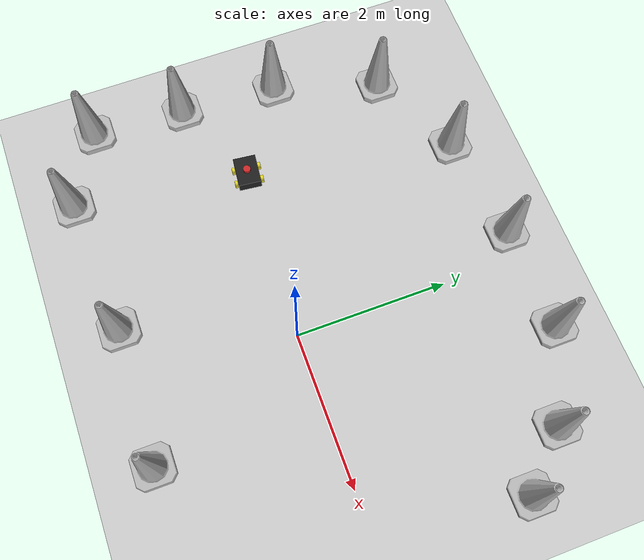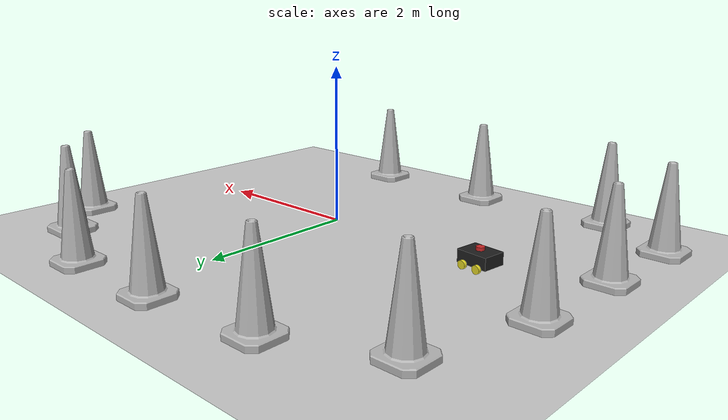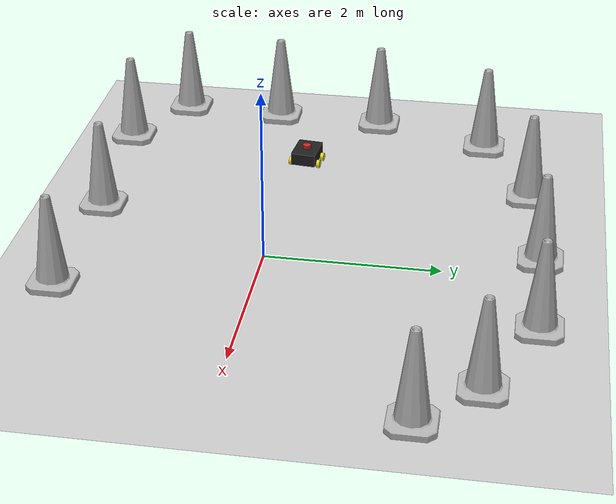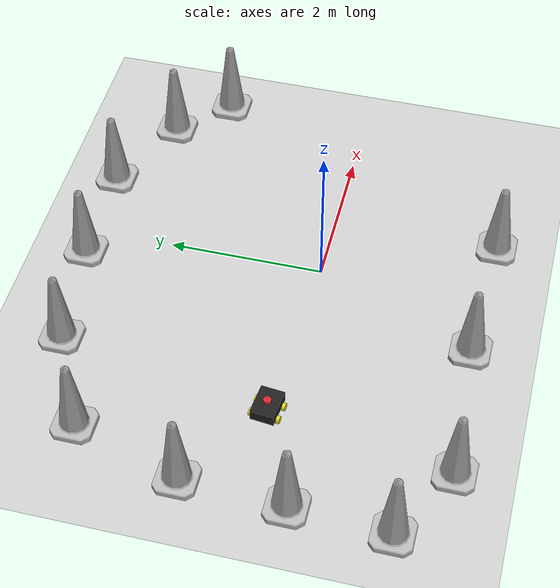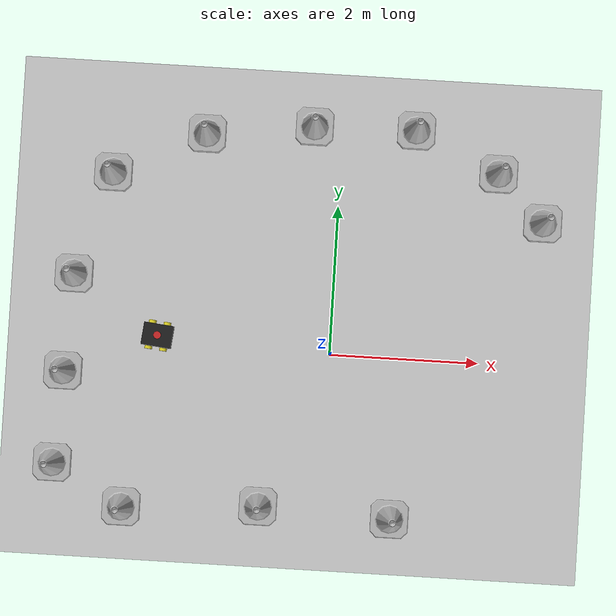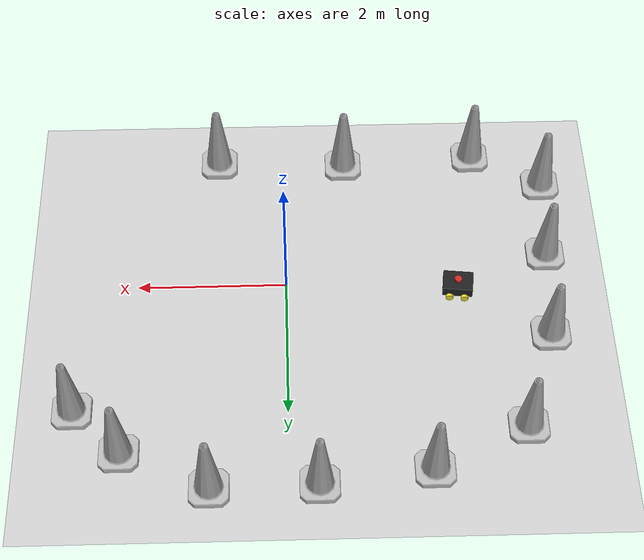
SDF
<sdf version="1.7">
 <world name="default">
  <light name="sun" type="directional">
   <pose>0 0 10 0 -0 0</pose>
   <diffuse>0.8 0.8 0.8 1</diffuse>
   <specular>0.2 0.2 0.2 1</specular>
   <attenuation>
    <range>1000</range>
    <constant>0.9</constant>
    <linear>0.01</linear>
    <quadratic>0.001</quadratic>
   </attenuation>
   <direction>-0.5 0.1 -0.9</direction>
   <spot><inner_angle>0</inner_angle><outer_angle>0</outer_angle><falloff>0</falloff></spot>
  </light>
  <model name="ground_plane">
   <static>1</static>
   <link name="link">
    <collision name="collision">
     <geometry><plane><normal>0 0 1</normal><size>100 100</size></plane></geometry>
     <surface><friction><ode><mu>100</mu><mu2>50</mu2></ode></friction></surface>
    </collision>
    <visual name="visual">
     <cast_shadows>0</cast_shadows>
     <geometry><plane><normal>0 0 1</normal><size>100 100</size></plane></geometry>
     <material>
      <script><uri>file://media/materials/scripts/gazebo.material</uri><name>Gazebo/Grey</name></script>
     </material>
    </visual>
   </link>
  </model>
  <gravity>0 0 -9.8</gravity>
  <magnetic_field>6e-06 2.3e-05 -4.2e-05</magnetic_field>
  <atmosphere type="adiabatic"/>
  <physics type="ode">
   <max_step_size>0.001</max_step_size>
   <real_time_factor>1</real_time_factor>
   <real_time_update_rate>1000</real_time_update_rate>
  </physics>
  <scene><ambient>0.4 0.4 0.4 1</ambient><background>0.7 0.7 0.7 1</background><shadows>1</shadows></scene>
  <audio><device>default</device></audio>
  <spherical_coordinates>
   <surface_model>EARTH_WGS84</surface_model>
   <latitude_deg>0</latitude_deg>
   <longitude_deg>0</longitude_deg>
   <elevation>0</elevation>
   <heading_deg>0</heading_deg>
  </spherical_coordinates>
  <model name="my_bot">
   <link name="base_link">
    <inertial>
     <pose>0 0 0.091667 0 -0 0</pose>
     <mass>0.6</mass>
     <inertia>
      <ixx>0.00559667</ixx>
      <ixy>0</ixy>
      <ixz>0</ixz>
      <iyy>0.00851333</iyy>
      <iyz>0</iyz>
      <izz>0.0105417</izz>
     </inertia>
    </inertial>
    <collision name="base_link_fixed_joint_lump__chassis_link_collision">
     <pose>0 0 0.075 0 -0 0</pose>
     <geometry><box><size>0.4 0.3 0.15</size></box></geometry>
    </collision>
    <collision name="base_link_fixed_joint_lump__lidar_link_collision_1">
     <pose>0 0 0.175 0 -0 0</pose>
     <geometry><cylinder><length>0.04</length><radius>0.05</radius></cylinder></geometry>
    </collision>
    <visual name="base_link_fixed_joint_lump__chassis_link_visual">
     <pose>0 0 0.075 0 -0 0</pose>
     <geometry><box><size>0.4 0.3 0.15</size></box></geometry>
     <material>
      <script><name>Gazebo/Black</name><uri>file://media/materials/scripts/gazebo.material</uri></script>
     </material>
    </visual>
    <visual name="base_link_fixed_joint_lump__lidar_link_visual_1">
     <pose>0 0 0.175 0 -0 0</pose>
     <geometry><cylinder><length>0.04</length><radius>0.05</radius></cylinder></geometry>
     <material>
      <script><name>Gazebo/Red</name><uri>file://media/materials/scripts/gazebo.material</uri></script>
     </material>
    </visual>
    <sensor name="laser" type="ray">
     <visualize>1</visualize>
     <update_rate>10</update_rate>
     <ray>
      <scan>
       <horizontal>
        <samples>360</samples>
        <min_angle>-3.14</min_angle>
        <max_angle>3.14</max_angle>
        <resolution>1</resolution>
       </horizontal>
       <vertical><samples>1</samples><min_angle>0</min_angle><max_angle>0</max_angle></vertical>
      </scan>
      <range><min>0.3</min><max>12</max></range>
     </ray>
     <plugin name="laser_controller" filename="libgazebo_ros_ray_sensor.so">
      <ros><argument>~/out:=scan</argument></ros>
      <output_type>sensor_msgs/LaserScan</output_type>
      <frame_name>laser_frame</frame_name>
     </plugin>
     <pose>0 0 0.175 0 -0 0</pose>
    </sensor>
   </link>
   <joint name="left_wheel_back_joint" type="revolute">
    <pose relative_to="base_link">-0.1 0.175 0 1.5708 -0 0</pose>
    <parent>base_link</parent>
    <child>left_wheel_back_link</child>
    <axis>
     <xyz>0 0 1</xyz>
     <limit><lower>-1e+16</lower><upper>1e+16</upper></limit>
     <dynamics><spring_reference>0</spring_reference><spring_stiffness>0</spring_stiffness></dynamics>
    </axis>
   </joint>
   <link name="left_wheel_back_link">
    <pose relative_to="left_wheel_back_joint">0 0 0 0 -0 0</pose>
    <inertial>
     <mass>0.1</mass>
     <inertia>
      <ixx>7.58333e-05</ixx>
      <ixy>0</ixy>
      <ixz>0</ixz>
      <iyy>7.58333e-05</iyy>
      <iyz>0</iyz>
      <izz>0.000125</izz>
     </inertia>
    </inertial>
    <collision name="left_wheel_back_link_collision">
     <geometry><cylinder><length>0.04</length><radius>0.05</radius></cylinder></geometry>
    </collision>
    <visual name="left_wheel_back_link_visual">
     <geometry><cylinder><length>0.04</length><radius>0.05</radius></cylinder></geometry>
     <material>
      <script><name>Gazebo/Yellow</name><uri>file://media/materials/scripts/gazebo.material</uri></script>
     </material>
    </visual>
   </link>
   <joint name="left_wheel_front_joint" type="revolute">
    <pose relative_to="base_link">0.1 0.175 0 1.5708 -0 0</pose>
    <parent>base_link</parent>
    <child>left_wheel_front_link</child>
    <axis>
     <xyz>0 0 1</xyz>
     <limit><lower>-1e+16</lower><upper>1e+16</upper></limit>
     <dynamics><spring_reference>0</spring_reference><spring_stiffness>0</spring_stiffness></dynamics>
    </axis>
   </joint>
   <link name="left_wheel_front_link">
    <pose relative_to="left_wheel_front_joint">0 0 0 0 -0 0</pose>
    <inertial>
     <mass>0.1</mass>
     <inertia>
      <ixx>7.58333e-05</ixx>
      <ixy>0</ixy>
      <ixz>0</ixz>
      <iyy>7.58333e-05</iyy>
      <iyz>0</iyz>
      <izz>0.000125</izz>
     </inertia>
    </inertial>
    <collision name="left_wheel_front_link_collision">
     <geometry><cylinder><length>0.04</length><radius>0.05</radius></cylinder></geometry>
    </collision>
    <visual name="left_wheel_front_link_visual">
     <geometry><cylinder><length>0.04</length><radius>0.05</radius></cylinder></geometry>
     <material>
      <script><name>Gazebo/Yellow</name><uri>file://media/materials/scripts/gazebo.material</uri></script>
     </material>
    </visual>
   </link>
   <joint name="right_wheel_back_joint" type="revolute">
    <pose relative_to="base_link">-0.1 -0.175 0 1.5708 -0 0</pose>
    <parent>base_link</parent>
    <child>right_wheel_back_link</child>
    <axis>
     <xyz>0 0 -1</xyz>
     <limit><lower>-1e+16</lower><upper>1e+16</upper></limit>
     <dynamics><spring_reference>0</spring_reference><spring_stiffness>0</spring_stiffness></dynamics>
    </axis>
   </joint>
   <link name="right_wheel_back_link">
    <pose relative_to="right_wheel_back_joint">0 0 0 0 -0 0</pose>
    <inertial>
     <mass>0.1</mass>
     <inertia>
      <ixx>7.58333e-05</ixx>
      <ixy>0</ixy>
      <ixz>0</ixz>
      <iyy>7.58333e-05</iyy>
      <iyz>0</iyz>
      <izz>0.000125</izz>
     </inertia>
    </inertial>
    <collision name="right_wheel_back_link_collision">
     <geometry><cylinder><length>0.04</length><radius>0.05</radius></cylinder></geometry>
    </collision>
    <visual name="right_wheel_back_link_visual">
     <geometry><cylinder><length>0.04</length><radius>0.05</radius></cylinder></geometry>
     <material>
      <script><name>Gazebo/Yellow</name><uri>file://media/materials/scripts/gazebo.material</uri></script>
     </material>
    </visual>
   </link>
   <joint name="right_wheel_front_joint" type="revolute">
    <pose relative_to="base_link">0.1 -0.175 0 1.5708 -0 0</pose>
    <parent>base_link</parent>
    <child>right_wheel_front_link</child>
    <axis>
     <xyz>0 0 -1</xyz>
     <limit><lower>-1e+16</lower><upper>1e+16</upper></limit>
     <dynamics><spring_reference>0</spring_reference><spring_stiffness>0</spring_stiffness></dynamics>
    </axis>
   </joint>
   <link name="right_wheel_front_link">
    <pose relative_to="right_wheel_front_joint">0 0 0 0 -0 0</pose>
    <inertial>
     <mass>0.1</mass>
     <inertia>
      <ixx>7.58333e-05</ixx>
      <ixy>0</ixy>
      <ixz>0</ixz>
      <iyy>7.58333e-05</iyy>
      <iyz>0</iyz>
      <izz>0.000125</izz>
     </inertia>
    </inertial>
    <collision name="right_wheel_front_link_collision">
     <geometry><cylinder><length>0.04</length><radius>0.05</radius></cylinder></geometry>
    </collision>
    <visual name="right_wheel_front_link_visual">
     <geometry><cylinder><length>0.04</length><radius>0.05</radius></cylinder></geometry>
     <material>
      <script><name>Gazebo/Yellow</name><uri>file://media/materials/scripts/gazebo.material</uri></script>
     </material>
    </visual>
   </link>
   <static>0</static>
   <plugin name="diff_drive" filename="libgazebo_ros_diff_drive.so">
    <num_wheel_pairs>2</num_wheel_pairs>
    <left_joint>left_wheel_front_joint</left_joint>
    <left_joint>left_wheel_back_joint</left_joint>
    <right_joint>right_wheel_front_joint</right_joint>
    <right_joint>right_wheel_back_joint</right_joint>
    <wheel_separation>0.35</wheel_separation>
    <wheel_diameter>0.1</wheel_diameter>
    <max_wheel_torque>200</max_wheel_torque>
    <max_wheel_acceleration>10.0</max_wheel_acceleration>
    <odometry_frame>odom</odometry_frame>
    <robot_base_frame>base_link</robot_base_frame>
    <publish_odom>1</publish_odom>
    <publish_odom_tf>1</publish_odom_tf>
    <publish_wheel_tf>1</publish_wheel_tf>
   </plugin>
   <pose>-2.31094 0.124476 0.05 -0 -0 -0.109101</pose>
  </model>
  <model name="Construction Cone">
   <link name="link">
    <collision name="collision">
     <geometry>
      <mesh><scale>10 10 10</scale><uri>model://construction_cone/meshes/construction_cone.dae</uri></mesh>
     </geometry>
    </collision>
    <visual name="visual">
     <geometry>
      <mesh><scale>10 10 10</scale><uri>model://construction_cone/meshes/construction_cone.dae</uri></mesh>
     </geometry>
    </visual>
    <inertial>
     <inertia><ixx>1</ixx><ixy>0</ixy><ixz>0</ixz><iyy>1</iyy><iyz>0</iyz><izz>1</izz></inertia>
     <mass>1</mass>
    </inertial>
   </link>
   <pose>-0.836246 -2.07758 -0 0 -0 0</pose>
  </model>
  <model name="Construction Cone_0">
   <link name="link">
    <collision name="collision">
     <geometry>
      <mesh><scale>10 10 10</scale><uri>model://construction_cone/meshes/construction_cone.dae</uri></mesh>
     </geometry>
    </collision>
    <visual name="visual">
     <geometry>
      <mesh><scale>10 10 10</scale><uri>model://construction_cone/meshes/construction_cone.dae</uri></mesh>
     </geometry>
    </visual>
    <inertial>
     <inertia><ixx>1</ixx><ixy>0</ixy><ixz>0</ixz><iyy>1</iyy><iyz>0</iyz><izz>1</izz></inertia>
     <mass>1</mass>
    </inertial>
   </link>
   <pose>0.927973 -2.1443 -0 0 -1e-06 0</pose>
  </model>
  <model name="Construction Cone_1">
   <link name="link">
    <collision name="collision">
     <geometry>
      <mesh><scale>10 10 10</scale><uri>model://construction_cone/meshes/construction_cone.dae</uri></mesh>
     </geometry>
    </collision>
    <visual name="visual">
     <geometry>
      <mesh><scale>10 10 10</scale><uri>model://construction_cone/meshes/construction_cone.dae</uri></mesh>
     </geometry>
    </visual>
    <inertial>
     <inertia><ixx>1</ixx><ixy>0</ixy><ixz>0</ixz><iyy>1</iyy><iyz>0</iyz><izz>1</izz></inertia>
     <mass>1</mass>
    </inertial>
   </link>
   <pose>-2.66609 -2.18708 -0 0 -1e-06 0</pose>
  </model>
  <model name="Construction Cone_2">
   <link name="link">
    <collision name="collision">
     <geometry>
      <mesh><scale>10 10 10</scale><uri>model://construction_cone/meshes/construction_cone.dae</uri></mesh>
     </geometry>
    </collision>
    <visual name="visual">
     <geometry>
      <mesh><scale>10 10 10</scale><uri>model://construction_cone/meshes/construction_cone.dae</uri></mesh>
     </geometry>
    </visual>
    <inertial>
     <inertia><ixx>1</ixx><ixy>0</ixy><ixz>0</ixz><iyy>1</iyy><iyz>0</iyz><izz>1</izz></inertia>
     <mass>1</mass>
    </inertial>
   </link>
   <pose>-3.62292 -1.65022 -1e-05 -0 -0 -0</pose>
  </model>
  <model name="Construction Cone_3">
   <link name="link">
    <collision name="collision">
     <geometry>
      <mesh><scale>10 10 10</scale><uri>model://construction_cone/meshes/construction_cone.dae</uri></mesh>
     </geometry>
    </collision>
    <visual name="visual">
     <geometry>
      <mesh><scale>10 10 10</scale><uri>model://construction_cone/meshes/construction_cone.dae</uri></mesh>
     </geometry>
    </visual>
    <inertial>
     <inertia><ixx>1</ixx><ixy>0</ixy><ixz>0</ixz><iyy>1</iyy><iyz>0</iyz><izz>1</izz></inertia>
     <mass>1</mass>
    </inertial>
   </link>
   <pose>-3.55572 -0.41594 -0 0 -1e-06 0</pose>
  </model>
  <model name="Construction Cone_4">
   <link name="link">
    <collision name="collision">
     <geometry>
      <mesh><scale>10 10 10</scale><uri>model://construction_cone/meshes/construction_cone.dae</uri></mesh>
     </geometry>
    </collision>
    <visual name="visual">
     <geometry>
      <mesh><scale>10 10 10</scale><uri>model://construction_cone/meshes/construction_cone.dae</uri></mesh>
     </geometry>
    </visual>
    <inertial>
     <inertia><ixx>1</ixx><ixy>0</ixy><ixz>0</ixz><iyy>1</iyy><iyz>0</iyz><izz>1</izz></inertia>
     <mass>1</mass>
    </inertial>
   </link>
   <pose>-3.48811 0.89458 0 -0 -0 -0</pose>
  </model>
  <model name="Construction Cone_5">
   <link name="link">
    <collision name="collision">
     <geometry>
      <mesh><scale>10 10 10</scale><uri>model://construction_cone/meshes/construction_cone.dae</uri></mesh>
     </geometry>
    </collision>
    <visual name="visual">
     <geometry>
      <mesh><scale>10 10 10</scale><uri>model://construction_cone/meshes/construction_cone.dae</uri></mesh>
     </geometry>
    </visual>
    <inertial>
     <inertia><ixx>1</ixx><ixy>0</ixy><ixz>0</ixz><iyy>1</iyy><iyz>0</iyz><izz>1</izz></inertia>
     <mass>1</mass>
    </inertial>
   </link>
   <pose>-3.04468 2.28649 -0 0 -0 0</pose>
  </model>
  <model name="Construction Cone_6">
   <link name="link">
    <collision name="collision">
     <geometry>
      <mesh><scale>10 10 10</scale><uri>model://construction_cone/meshes/construction_cone.dae</uri></mesh>
     </geometry>
    </collision>
    <visual name="visual">
     <geometry>
      <mesh><scale>10 10 10</scale><uri>model://construction_cone/meshes/construction_cone.dae</uri></mesh>
     </geometry>
    </visual>
    <inertial>
     <inertia><ixx>1</ixx><ixy>0</ixy><ixz>0</ixz><iyy>1</iyy><iyz>0</iyz><izz>1</izz></inertia>
     <mass>1</mass>
    </inertial>
   </link>
   <pose>-1.81552 2.87959 -0 0 -0 0</pose>
  </model>
  <model name="Construction Cone_7">
   <link name="link">
    <collision name="collision">
     <geometry>
      <mesh><scale>10 10 10</scale><uri>model://construction_cone/meshes/construction_cone.dae</uri></mesh>
     </geometry>
    </collision>
    <visual name="visual">
     <geometry>
      <mesh><scale>10 10 10</scale><uri>model://construction_cone/meshes/construction_cone.dae</uri></mesh>
     </geometry>
    </visual>
    <inertial>
     <inertia><ixx>1</ixx><ixy>0</ixy><ixz>0</ixz><iyy>1</iyy><iyz>0</iyz><izz>1</izz></inertia>
     <mass>1</mass>
    </inertial>
   </link>
   <pose>-0.376557 3.05849 -0 0 -0 0</pose>
  </model>
  <model name="Construction Cone_8">
   <link name="link">
    <collision name="collision">
     <geometry>
      <mesh><scale>10 10 10</scale><uri>model://construction_cone/meshes/construction_cone.dae</uri></mesh>
     </geometry>
    </collision>
    <visual name="visual">
     <geometry>
      <mesh><scale>10 10 10</scale><uri>model://construction_cone/meshes/construction_cone.dae</uri></mesh>
     </geometry>
    </visual>
    <inertial>
     <inertia><ixx>1</ixx><ixy>0</ixy><ixz>0</ixz><iyy>1</iyy><iyz>0</iyz><izz>1</izz></inertia>
     <mass>1</mass>
    </inertial>
   </link>
   <pose>0.993052 3.08333 -0 0 -0 0</pose>
  </model>
  <model name="Construction Cone_9">
   <link name="link">
    <collision name="collision">
     <geometry>
      <mesh><scale>10 10 10</scale><uri>model://construction_cone/meshes/construction_cone.dae</uri></mesh>
     </geometry>
    </collision>
    <visual name="visual">
     <geometry>
      <mesh><scale>10 10 10</scale><uri>model://construction_cone/meshes/construction_cone.dae</uri></mesh>
     </geometry>
    </visual>
    <inertial>
     <inertia><ixx>1</ixx><ixy>0</ixy><ixz>0</ixz><iyy>1</iyy><iyz>0</iyz><izz>1</izz></inertia>
     <mass>1</mass>
    </inertial>
   </link>
   <pose>2.13002 2.56579 -0 0 -1e-06 0</pose>
  </model>
  <model name="Construction Cone_10">
   <link name="link">
    <collision name="collision">
     <geometry>
      <mesh><scale>10 10 10</scale><uri>model://construction_cone/meshes/construction_cone.dae</uri></mesh>
     </geometry>
    </collision>
    <visual name="visual">
     <geometry>
      <mesh><scale>10 10 10</scale><uri>model://construction_cone/meshes/construction_cone.dae</uri></mesh>
     </geometry>
    </visual>
    <inertial>
     <inertia><ixx>1</ixx><ixy>0</ixy><ixz>0</ixz><iyy>1</iyy><iyz>0</iyz><izz>1</izz></inertia>
     <mass>1</mass>
    </inertial>
   </link>
   <pose>2.75817 1.93698 -0 0 -1e-06 0</pose>
  </model>
 </world>
</sdf>
